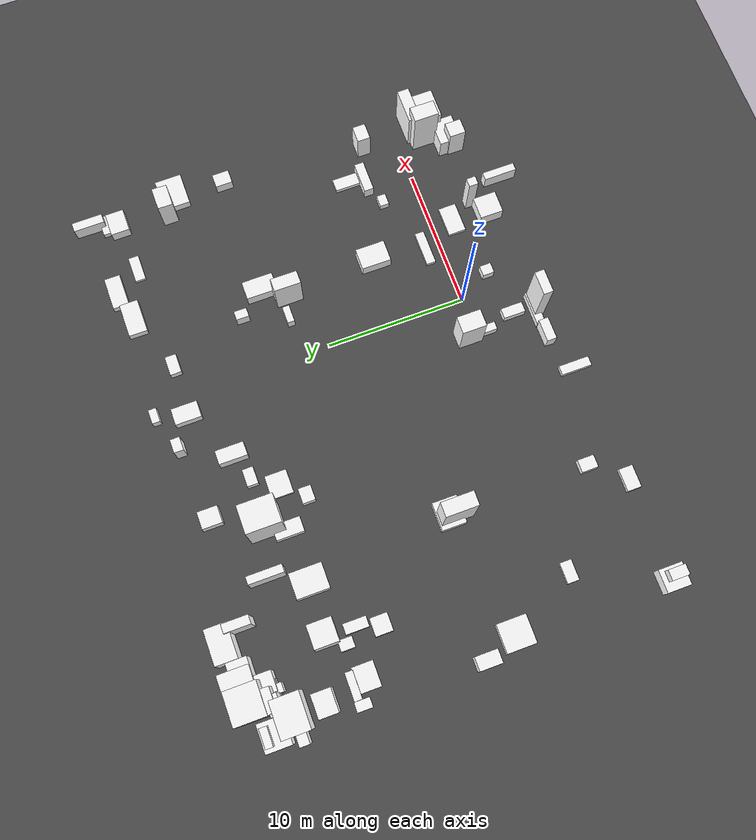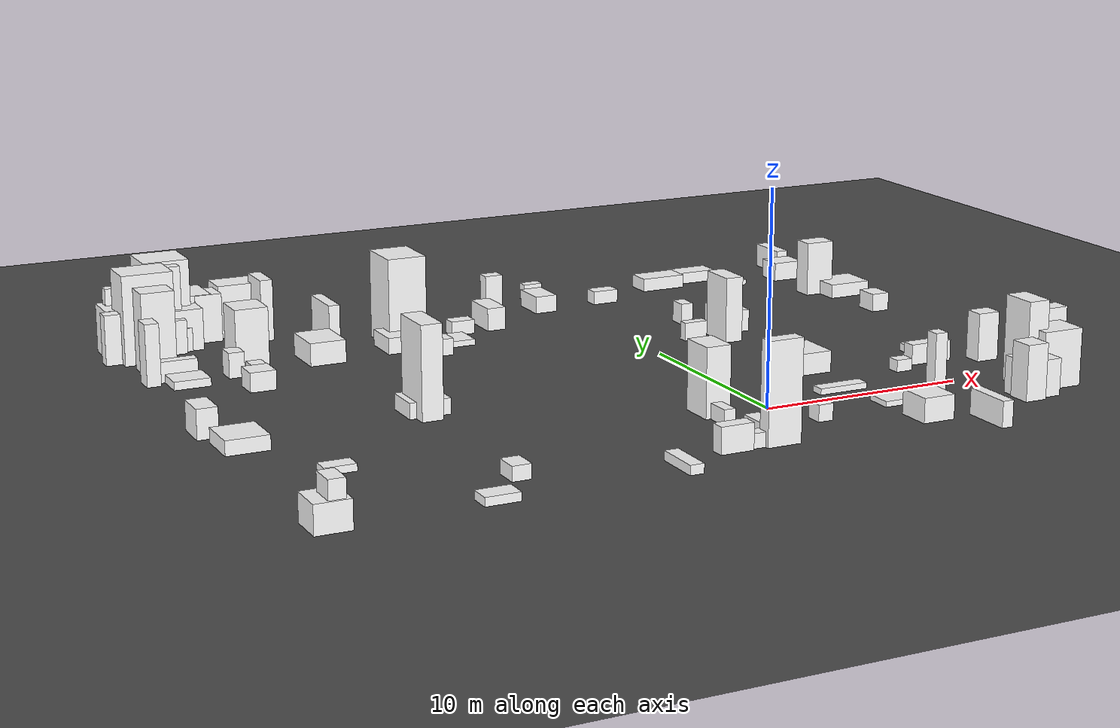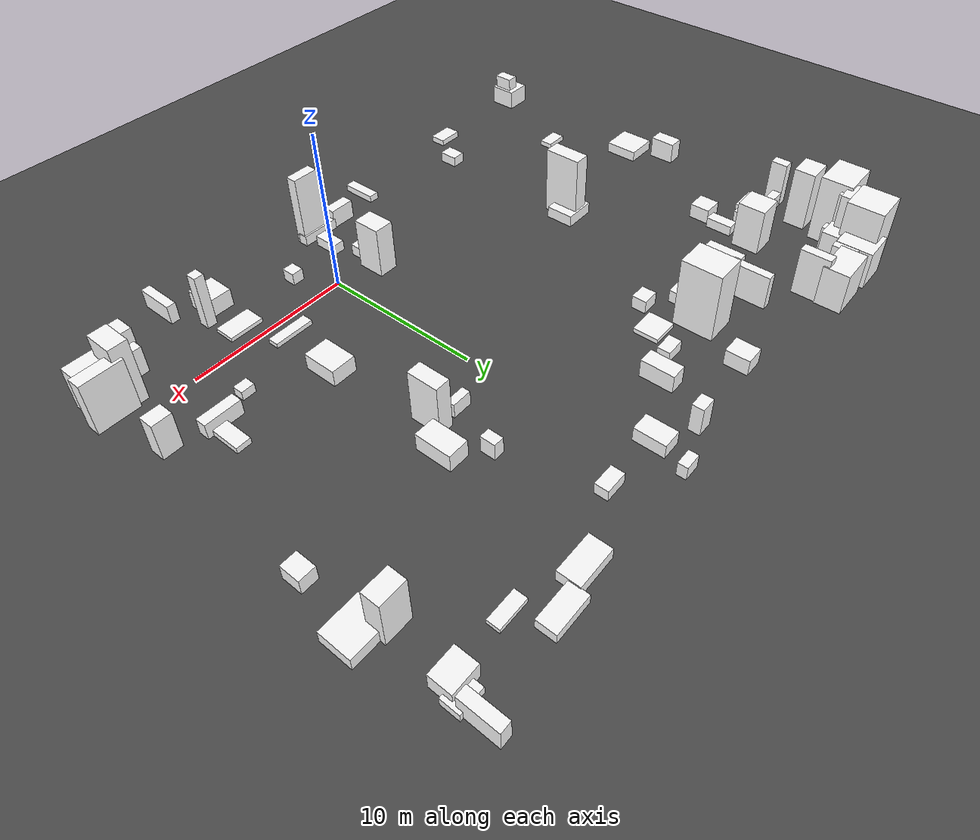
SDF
<sdf version="1.6">
 <world name="mirror_edge_world">
  <model name="ground_plane">
   <static>true</static>
   <link name="link">
    <collision name="collision">
     <geometry><plane><normal>0 0 1</normal><size>100 100</size></plane></geometry>
    </collision>
    <visual name="visual">
     <geometry><plane><normal>0 0 1</normal><size>100 100</size></plane></geometry>
     <material>
      <ambient>0.3 0.3 0.3 1</ambient>
      <diffuse>0.3 0.3 0.3 1</diffuse>
      <specular>0.5 0.5 0.5 1</specular>
      <emissive>0 0 0 1</emissive>
     </material>
    </visual>
   </link>
  </model>
  <model name="block_19_13">
   <static>true</static>
   <link name="link">
    <pose>-16.202012975402017 21.838599542866685 1.5408518312215616 0 0 0</pose>
    <visual name="visual">
     <geometry><box><size>0.6343054884045327 1.8376066959994222 3.081703662443123</size></box></geometry>
     <material>
      <ambient>1 1 1 1</ambient>
      <diffuse>1 1 1 1</diffuse>
      <specular>0.9 0.9 0.9 1</specular>
      <emissive>0.05 0.05 0.05 1</emissive>
     </material>
    </visual>
   </link>
  </model>
  <model name="block_19_14">
   <static>true</static>
   <link name="link">
    <pose>-22.99239313099075 -5.80346864161111 0.6404910453006516 0 0 0</pose>
    <visual name="visual">
     <geometry><box><size>1.6046553902521452 1.711579544830917 1.2809820906013032</size></box></geometry>
     <material>
      <ambient>1 1 1 1</ambient>
      <diffuse>1 1 1 1</diffuse>
      <specular>0.9 0.9 0.9 1</specular>
      <emissive>0.05 0.05 0.05 1</emissive>
     </material>
    </visual>
   </link>
  </model>
  <model name="block_19_18">
   <static>true</static>
   <link name="link">
    <pose>-23.54805574424907 15.969230801843974 1.4976649399642463 0 0 0</pose>
    <visual name="visual">
     <geometry><box><size>0.6708027269664167 1.053155784695749 2.9953298799284926</size></box></geometry>
     <material>
      <ambient>1 1 1 1</ambient>
      <diffuse>1 1 1 1</diffuse>
      <specular>0.9 0.9 0.9 1</specular>
      <emissive>0.05 0.05 0.05 1</emissive>
     </material>
    </visual>
   </link>
  </model>
  <model name="block_19_22">
   <static>true</static>
   <link name="link">
    <pose>4.375840806940101 11.490374755172805 1.6289961203168895 0 0 0</pose>
    <visual name="visual">
     <geometry><box><size>0.9164208010323647 1.9040976968150582 3.257992240633779</size></box></geometry>
     <material>
      <ambient>1 1 1 1</ambient>
      <diffuse>1 1 1 1</diffuse>
      <specular>0.9 0.9 0.9 1</specular>
      <emissive>0.05 0.05 0.05 1</emissive>
     </material>
    </visual>
   </link>
  </model>
  <model name="block_19_24">
   <static>true</static>
   <link name="link">
    <pose>-23.713552080973734 7.532042911151415 0.6981833328591058 0 0 0</pose>
    <visual name="visual">
     <geometry><box><size>0.9779484929861988 1.6204673549570643 1.3963666657182117</size></box></geometry>
     <material>
      <ambient>1 1 1 1</ambient>
      <diffuse>1 1 1 1</diffuse>
      <specular>0.9 0.9 0.9 1</specular>
      <emissive>0.05 0.05 0.05 1</emissive>
     </material>
    </visual>
   </link>
  </model>
  <model name="block_19_26">
   <static>true</static>
   <link name="link">
    <pose>-2.4872864471279996 -4.451877402213051 0.33875965882530135 0 0 0</pose>
    <collision name="collision">
     <geometry><box><size>2.414343872940468 0.609315285404834 0.6775193176506027</size></box></geometry>
    </collision>
    <visual name="visual">
     <geometry><box><size>2.414343872940468 0.609315285404834 0.6775193176506027</size></box></geometry>
     <material>
      <ambient>1 1 1 1</ambient>
      <diffuse>1 1 1 1</diffuse>
      <specular>0.9 0.9 0.9 1</specular>
      <emissive>0.05 0.05 0.05 1</emissive>
     </material>
    </visual>
   </link>
  </model>
  <model name="block_19_28">
   <static>true</static>
   <link name="link">
    <pose>-21.67083288677545 21.120226441842657 1.9616895174650588 0 0 0</pose>
    <visual name="visual">
     <geometry><box><size>1.3478220588731091 0.7842292086402103 3.9233790349301176</size></box></geometry>
     <material>
      <ambient>1 1 1 1</ambient>
      <diffuse>1 1 1 1</diffuse>
      <specular>0.9 0.9 0.9 1</specular>
      <emissive>0.05 0.05 0.05 1</emissive>
     </material>
    </visual>
   </link>
  </model>
  <model name="block_19_29">
   <static>true</static>
   <link name="link">
    <pose>13.993946501029065 -1.086576167034873 1.6726531310662562 0 0 0</pose>
    <visual name="visual">
     <geometry><box><size>2.436493143973526 0.8450977755387321 3.3453062621325125</size></box></geometry>
     <material>
      <ambient>1 1 1 1</ambient>
      <diffuse>1 1 1 1</diffuse>
      <specular>0.9 0.9 0.9 1</specular>
      <emissive>0.05 0.05 0.05 1</emissive>
     </material>
    </visual>
   </link>
  </model>
  <model name="block_19_30">
   <static>true</static>
   <link name="link">
    <pose>10.93249461358026 3.4338071876281218 0.4953330977453381 0 0 0</pose>
    <collision name="collision">
     <geometry><box><size>2.1888908577413226 0.6889161656684251 0.9906661954906762</size></box></geometry>
    </collision>
    <visual name="visual">
     <geometry><box><size>2.1888908577413226 0.6889161656684251 0.9906661954906762</size></box></geometry>
     <material>
      <ambient>1 1 1 1</ambient>
      <diffuse>1 1 1 1</diffuse>
      <specular>0.9 0.9 0.9 1</specular>
      <emissive>0.05 0.05 0.05 1</emissive>
     </material>
    </visual>
   </link>
  </model>
  <model name="block_19_32">
   <static>true</static>
   <link name="link">
    <pose>-17.008376293989528 23.176902993205086 1.3234841582794954 0 0 0</pose>
    <visual name="visual">
     <geometry><box><size>2.423970059439636 1.5696388986902523 2.646968316558991</size></box></geometry>
     <material>
      <ambient>1 1 1 1</ambient>
      <diffuse>1 1 1 1</diffuse>
      <specular>0.9 0.9 0.9 1</specular>
      <emissive>0.05 0.05 0.05 1</emissive>
     </material>
    </visual>
   </link>
  </model>
  <model name="block_19_34">
   <static>true</static>
   <link name="link">
    <pose>-19.25454404328935 13.19127751036152 0.47205638281876877 0 0 0</pose>
    <collision name="collision">
     <geometry><box><size>1.256835924824992 1.2451387083487018 0.9441127656375375</size></box></geometry>
    </collision>
    <visual name="visual">
     <geometry><box><size>1.256835924824992 1.2451387083487018 0.9441127656375375</size></box></geometry>
     <material>
      <ambient>1 1 1 1</ambient>
      <diffuse>1 1 1 1</diffuse>
      <specular>0.9 0.9 0.9 1</specular>
      <emissive>0.05 0.05 0.05 1</emissive>
     </material>
    </visual>
   </link>
  </model>
  <model name="block_19_35">
   <static>true</static>
   <link name="link">
    <pose>-23.325469400484696 21.759755115301328 1.2050807940757193 0 0 0</pose>
    <visual name="visual">
     <geometry><box><size>1.926816132929814 1.8125715195272165 2.4101615881514387</size></box></geometry>
     <material>
      <ambient>1 1 1 1</ambient>
      <diffuse>1 1 1 1</diffuse>
      <specular>0.9 0.9 0.9 1</specular>
      <emissive>0.05 0.05 0.05 1</emissive>
     </material>
    </visual>
   </link>
  </model>
  <model name="block_19_41">
   <static>true</static>
   <link name="link">
    <pose>13.924683789574473 21.87801823984593 0.24282756466232763 0 0 0</pose>
    <collision name="collision">
     <geometry><box><size>1.4194749413200944 1.067243132483708 0.48565512932465527</size></box></geometry>
    </collision>
    <visual name="visual">
     <geometry><box><size>1.4194749413200944 1.067243132483708 0.48565512932465527</size></box></geometry>
     <material>
      <ambient>1 1 1 1</ambient>
      <diffuse>1 1 1 1</diffuse>
      <specular>0.9 0.9 0.9 1</specular>
      <emissive>0.05 0.05 0.05 1</emissive>
     </material>
    </visual>
   </link>
  </model>
  <model name="block_19_45">
   <static>true</static>
   <link name="link">
    <pose>-22.64495845726883 18.165379572806778 1.967237534056349 0 0 0</pose>
    <visual name="visual">
     <geometry><box><size>1.609588836853626 1.340435634357934 3.934475068112698</size></box></geometry>
     <material>
      <ambient>1 1 1 1</ambient>
      <diffuse>1 1 1 1</diffuse>
      <specular>0.9 0.9 0.9 1</specular>
      <emissive>0.05 0.05 0.05 1</emissive>
     </material>
    </visual>
   </link>
  </model>
  <model name="block_19_47">
   <static>true</static>
   <link name="link">
    <pose>-5.200457969969815 18.787895366056 0.5765862929522821 0 0 0</pose>
    <collision name="collision">
     <geometry><box><size>0.9871429165947216 2.0208804708235633 1.1531725859045643</size></box></geometry>
    </collision>
    <visual name="visual">
     <geometry><box><size>0.9871429165947216 2.0208804708235633 1.1531725859045643</size></box></geometry>
     <material>
      <ambient>1 1 1 1</ambient>
      <diffuse>1 1 1 1</diffuse>
      <specular>0.9 0.9 0.9 1</specular>
      <emissive>0.05 0.05 0.05 1</emissive>
     </material>
    </visual>
   </link>
  </model>
  <model name="block_19_49">
   <static>true</static>
   <link name="link">
    <pose>14.31598940149938 13.103567996774142 0.462033321916186 0 0 0</pose>
    <collision name="collision">
     <geometry><box><size>0.9634874807768259 1.2177237019371345 0.924066643832372</size></box></geometry>
    </collision>
    <visual name="visual">
     <geometry><box><size>0.9634874807768259 1.2177237019371345 0.924066643832372</size></box></geometry>
     <material>
      <ambient>1 1 1 1</ambient>
      <diffuse>1 1 1 1</diffuse>
      <specular>0.9 0.9 0.9 1</specular>
      <emissive>0.05 0.05 0.05 1</emissive>
     </material>
    </visual>
   </link>
  </model>
  <model name="block_19_53">
   <static>true</static>
   <link name="link">
    <pose>13.441570357564864 17.550260153822133 1.4108766145460854 0 0 0</pose>
    <visual name="visual">
     <geometry><box><size>1.548782621272523 1.0586597525765162 2.8217532290921707</size></box></geometry>
     <material>
      <ambient>1 1 1 1</ambient>
      <diffuse>1 1 1 1</diffuse>
      <specular>0.9 0.9 0.9 1</specular>
      <emissive>0.05 0.05 0.05 1</emissive>
     </material>
    </visual>
   </link>
  </model>
  <model name="block_19_56">
   <static>true</static>
   <link name="link">
    <pose>-18.58845085652321 16.902385963001844 1.5128566076144738 0 0 0</pose>
    <visual name="visual">
     <geometry><box><size>1.638329995806198 1.7031578032777934 3.0257132152289477</size></box></geometry>
     <material>
      <ambient>1 1 1 1</ambient>
      <diffuse>1 1 1 1</diffuse>
      <specular>0.9 0.9 0.9 1</specular>
      <emissive>0.05 0.05 0.05 1</emissive>
     </material>
    </visual>
   </link>
  </model>
  <model name="block_19_57">
   <static>true</static>
   <link name="link">
    <pose>-9.528119491338682 14.935015286920297 0.41440752895412947 0 0 0</pose>
    <collision name="collision">
     <geometry><box><size>1.0675423214260138 0.9050835372433081 0.8288150579082589</size></box></geometry>
    </collision>
    <visual name="visual">
     <geometry><box><size>1.0675423214260138 0.9050835372433081 0.8288150579082589</size></box></geometry>
     <material>
      <ambient>1 1 1 1</ambient>
      <diffuse>1 1 1 1</diffuse>
      <specular>0.9 0.9 0.9 1</specular>
      <emissive>0.05 0.05 0.05 1</emissive>
     </material>
    </visual>
   </link>
  </model>
  <model name="block_19_63">
   <static>true</static>
   <link name="link">
    <pose>1.3137147874009116 -2.3204394190903286 0.389432252879417 0 0 0</pose>
    <collision name="collision">
     <geometry><box><size>0.7351925549029068 0.8275360300387296 0.778864505758834</size></box></geometry>
    </collision>
    <visual name="visual">
     <geometry><box><size>0.7351925549029068 0.8275360300387296 0.778864505758834</size></box></geometry>
     <material>
      <ambient>1 1 1 1</ambient>
      <diffuse>1 1 1 1</diffuse>
      <specular>0.9 0.9 0.9 1</specular>
      <emissive>0.05 0.05 0.05 1</emissive>
     </material>
    </visual>
   </link>
  </model>
  <model name="block_19_67">
   <static>true</static>
   <link name="link">
    <pose>12.747843569083699 -1.7454135941089506 2.0591905707783225 0 0 0</pose>
    <visual name="visual">
     <geometry><box><size>1.0901834121532892 1.7640521122079742 4.118381141556645</size></box></geometry>
     <material>
      <ambient>1 1 1 1</ambient>
      <diffuse>1 1 1 1</diffuse>
      <specular>0.9 0.9 0.9 1</specular>
      <emissive>0.05 0.05 0.05 1</emissive>
     </material>
    </visual>
   </link>
  </model>
  <model name="block_20_0">
   <static>true</static>
   <link name="link">
    <pose>4.514685467571358 1.1004397896064972 0.14420947527800637 0 0 0</pose>
    <collision name="collision">
     <geometry><box><size>2.4716219411072418 0.6765629143730663 0.28841895055601274</size></box></geometry>
    </collision>
    <visual name="visual">
     <geometry><box><size>2.4716219411072418 0.6765629143730663 0.28841895055601274</size></box></geometry>
     <material>
      <ambient>1 1 1 1</ambient>
      <diffuse>1 1 1 1</diffuse>
      <specular>0.9 0.9 0.9 1</specular>
      <emissive>0.05 0.05 0.05 1</emissive>
     </material>
    </visual>
   </link>
  </model>
  <model name="block_20_2">
   <static>true</static>
   <link name="link">
    <pose>5.74312214442185 -4.1243834242203326 0.5750770237253855 0 0 0</pose>
    <collision name="collision">
     <geometry><box><size>1.5781493618633786 1.6722874134998942 1.150154047450771</size></box></geometry>
    </collision>
    <visual name="visual">
     <geometry><box><size>1.5781493618633786 1.6722874134998942 1.150154047450771</size></box></geometry>
     <material>
      <ambient>1 1 1 1</ambient>
      <diffuse>1 1 1 1</diffuse>
      <specular>0.9 0.9 0.9 1</specular>
      <emissive>0.05 0.05 0.05 1</emissive>
     </material>
    </visual>
   </link>
  </model>
  <model name="block_20_3">
   <static>true</static>
   <link name="link">
    <pose>-2.7582406256418146 -0.24901939799833706 0.36740333589804863 0 0 0</pose>
    <collision name="collision">
     <geometry><box><size>0.558053115725889 2.2786463860914177 0.7348066717960973</size></box></geometry>
    </collision>
    <visual name="visual">
     <geometry><box><size>0.558053115725889 2.2786463860914177 0.7348066717960973</size></box></geometry>
     <material>
      <ambient>1 1 1 1</ambient>
      <diffuse>1 1 1 1</diffuse>
      <specular>0.9 0.9 0.9 1</specular>
      <emissive>0.05 0.05 0.05 1</emissive>
     </material>
    </visual>
   </link>
  </model>
  <model name="block_20_4">
   <static>true</static>
   <link name="link">
    <pose>-15.023052368820412 16.65996293347571 0.5646603142682598 0 0 0</pose>
    <collision name="collision">
     <geometry><box><size>1.7970187254844157 2.3229163708879845 1.1293206285365196</size></box></geometry>
    </collision>
    <visual name="visual">
     <geometry><box><size>1.7970187254844157 2.3229163708879845 1.1293206285365196</size></box></geometry>
     <material>
      <ambient>1 1 1 1</ambient>
      <diffuse>1 1 1 1</diffuse>
      <specular>0.9 0.9 0.9 1</specular>
      <emissive>0.05 0.05 0.05 1</emissive>
     </material>
    </visual>
   </link>
  </model>
  <model name="block_20_5">
   <static>true</static>
   <link name="link">
    <pose>-18.8862873155913 22.601100376216795 1.2095349943545393 0 0 0</pose>
    <visual name="visual">
     <geometry><box><size>1.3423358383189348 1.4254736673652841 2.4190699887090785</size></box></geometry>
     <material>
      <ambient>1 1 1 1</ambient>
      <diffuse>1 1 1 1</diffuse>
      <specular>0.9 0.9 0.9 1</specular>
      <emissive>0.05 0.05 0.05 1</emissive>
     </material>
    </visual>
   </link>
  </model>
  <model name="block_20_6">
   <static>true</static>
   <link name="link">
    <pose>-20.21742931815342 21.668937022031585 1.0355552330330824 0 0 0</pose>
    <visual name="visual">
     <geometry><box><size>1.3879272158803506 1.839511161518585 2.071110466066165</size></box></geometry>
     <material>
      <ambient>1 1 1 1</ambient>
      <diffuse>1 1 1 1</diffuse>
      <specular>0.9 0.9 0.9 1</specular>
      <emissive>0.05 0.05 0.05 1</emissive>
     </material>
    </visual>
   </link>
  </model>
  <model name="block_20_7">
   <static>true</static>
   <link name="link">
    <pose>-23.638514806317765 20.200768184528464 1.2363916588414665 0 0 0</pose>
    <visual name="visual">
     <geometry><box><size>1.9506910186835318 0.6981169399702842 2.472783317682933</size></box></geometry>
     <material>
      <ambient>1 1 1 1</ambient>
      <diffuse>1 1 1 1</diffuse>
      <specular>0.9 0.9 0.9 1</specular>
      <emissive>0.05 0.05 0.05 1</emissive>
     </material>
    </visual>
   </link>
  </model>
  <model name="block_20_8">
   <static>true</static>
   <link name="link">
    <pose>-22.35807815963217 16.196293190533336 0.5004770172826828 0 0 0</pose>
    <collision name="collision">
     <geometry><box><size>2.115366435512655 0.5583014288438126 1.0009540345653656</size></box></geometry>
    </collision>
    <visual name="visual">
     <geometry><box><size>2.115366435512655 0.5583014288438126 1.0009540345653656</size></box></geometry>
     <material>
      <ambient>1 1 1 1</ambient>
      <diffuse>1 1 1 1</diffuse>
      <specular>0.9 0.9 0.9 1</specular>
      <emissive>0.05 0.05 0.05 1</emissive>
     </material>
    </visual>
   </link>
  </model>
  <model name="block_20_9">
   <static>true</static>
   <link name="link">
    <pose>-14.02021431619535 -3.5843261667409245 0.3354737305644835 0 0 0</pose>
    <collision name="collision">
     <geometry><box><size>0.8892479556614801 1.182342209391757 0.670947461128967</size></box></geometry>
    </collision>
    <visual name="visual">
     <geometry><box><size>0.8892479556614801 1.182342209391757 0.670947461128967</size></box></geometry>
     <material>
      <ambient>1 1 1 1</ambient>
      <diffuse>1 1 1 1</diffuse>
      <specular>0.9 0.9 0.9 1</specular>
      <emissive>0.05 0.05 0.05 1</emissive>
     </material>
    </visual>
   </link>
  </model>
  <model name="block_20_10">
   <static>true</static>
   <link name="link">
    <pose>14.140621452771938 23.14329614194077 0.6200746623098288 0 0 0</pose>
    <visual name="visual">
     <geometry><box><size>0.6352259347299771 2.1947776680835136 1.2401493246196575</size></box></geometry>
     <material>
      <ambient>1 1 1 1</ambient>
      <diffuse>1 1 1 1</diffuse>
      <specular>0.9 0.9 0.9 1</specular>
      <emissive>0.05 0.05 0.05 1</emissive>
     </material>
    </visual>
   </link>
  </model>
  <model name="block_20_11">
   <static>true</static>
   <link name="link">
    <pose>-21.010054189777687 22.711896327424288 2.1904076846107663 0 0 0</pose>
    <visual name="visual">
     <geometry><box><size>2.2849046581249253 2.2092181107679396 4.380815369221533</size></box></geometry>
     <material>
      <ambient>1 1 1 1</ambient>
      <diffuse>1 1 1 1</diffuse>
      <specular>0.9 0.9 0.9 1</specular>
      <emissive>0.05 0.05 0.05 1</emissive>
     </material>
    </visual>
   </link>
  </model>
  <model name="block_20_14">
   <static>true</static>
   <link name="link">
    <pose>-10.324368994010733 18.208256445400437 2.211540487920637 0 0 0</pose>
    <visual name="visual">
     <geometry><box><size>1.9659173787390865 2.4547655425847745 4.423080975841274</size></box></geometry>
     <material>
      <ambient>1 1 1 1</ambient>
      <diffuse>1 1 1 1</diffuse>
      <specular>0.9 0.9 0.9 1</specular>
      <emissive>0.05 0.05 0.05 1</emissive>
     </material>
    </visual>
   </link>
  </model>
  <model name="block_20_15">
   <static>true</static>
   <link name="link">
    <pose>-8.159386392739254 16.467924520763976 0.1466601775332672 0 0 0</pose>
    <collision name="collision">
     <geometry><box><size>1.675547463246875 1.5580469568018858 0.2933203550665344</size></box></geometry>
    </collision>
    <visual name="visual">
     <geometry><box><size>1.675547463246875 1.5580469568018858 0.2933203550665344</size></box></geometry>
     <material>
      <ambient>1 1 1 1</ambient>
      <diffuse>1 1 1 1</diffuse>
      <specular>0.9 0.9 0.9 1</specular>
      <emissive>0.05 0.05 0.05 1</emissive>
     </material>
    </visual>
   </link>
  </model>
  <model name="block_20_17">
   <static>true</static>
   <link name="link">
    <pose>-20.7757009487461 21.268625548313153 0.5835475438792082 0 0 0</pose>
    <visual name="visual">
     <geometry><box><size>1.3701247612981056 1.1344508390813388 1.1670950877584163</size></box></geometry>
     <material>
      <ambient>1 1 1 1</ambient>
      <diffuse>1 1 1 1</diffuse>
      <specular>0.9 0.9 0.9 1</specular>
      <emissive>0.05 0.05 0.05 1</emissive>
     </material>
    </visual>
   </link>
  </model>
  <model name="block_20_19">
   <static>true</static>
   <link name="link">
    <pose>3.9754902940628973 15.039701778538 0.5347346233053891 0 0 0</pose>
    <collision name="collision">
     <geometry><box><size>0.6356142812768761 0.9165442230109544 1.0694692466107782</size></box></geometry>
    </collision>
    <visual name="visual">
     <geometry><box><size>0.6356142812768761 0.9165442230109544 1.0694692466107782</size></box></geometry>
     <material>
      <ambient>1 1 1 1</ambient>
      <diffuse>1 1 1 1</diffuse>
      <specular>0.9 0.9 0.9 1</specular>
      <emissive>0.05 0.05 0.05 1</emissive>
     </material>
    </visual>
   </link>
  </model>
  <model name="block_20_22">
   <static>true</static>
   <link name="link">
    <pose>5.922416416103918 -1.509002882392652 0.1306949976550948 0 0 0</pose>
    <collision name="collision">
     <geometry><box><size>2.1191479432773264 1.2815381755729247 0.2613899953101896</size></box></geometry>
    </collision>
    <visual name="visual">
     <geometry><box><size>2.1191479432773264 1.2815381755729247 0.2613899953101896</size></box></geometry>
     <material>
      <ambient>1 1 1 1</ambient>
      <diffuse>1 1 1 1</diffuse>
      <specular>0.9 0.9 0.9 1</specular>
      <emissive>0.05 0.05 0.05 1</emissive>
     </material>
    </visual>
   </link>
  </model>
  <model name="block_20_23">
   <static>true</static>
   <link name="link">
    <pose>-20.258988562885197 0.31642292921929194 0.1673360314386203 0 0 0</pose>
    <collision name="collision">
     <geometry><box><size>1.4543165337358583 0.8377993631528355 0.3346720628772406</size></box></geometry>
    </collision>
    <visual name="visual">
     <geometry><box><size>1.4543165337358583 0.8377993631528355 0.3346720628772406</size></box></geometry>
     <material>
      <ambient>1 1 1 1</ambient>
      <diffuse>1 1 1 1</diffuse>
      <specular>0.9 0.9 0.9 1</specular>
      <emissive>0.05 0.05 0.05 1</emissive>
     </material>
    </visual>
   </link>
  </model>
  <model name="block_20_24">
   <static>true</static>
   <link name="link">
    <pose>13.60997325490753 21.19936058505832 0.48889977364060994 0 0 0</pose>
    <collision name="collision">
     <geometry><box><size>1.6076365882352517 1.3133949028524263 0.9777995472812199</size></box></geometry>
    </collision>
    <visual name="visual">
     <geometry><box><size>1.6076365882352517 1.3133949028524263 0.9777995472812199</size></box></geometry>
     <material>
      <ambient>1 1 1 1</ambient>
      <diffuse>1 1 1 1</diffuse>
      <specular>0.9 0.9 0.9 1</specular>
      <emissive>0.05 0.05 0.05 1</emissive>
     </material>
    </visual>
   </link>
  </model>
  <model name="block_20_25">
   <static>true</static>
   <link name="link">
    <pose>-7.311158792072753 -5.533203838803569 0.22030398388301886 0 0 0</pose>
    <collision name="collision">
     <geometry><box><size>0.6600468773254267 2.1952085420127108 0.4406079677660377</size></box></geometry>
    </collision>
    <visual name="visual">
     <geometry><box><size>0.6600468773254267 2.1952085420127108 0.4406079677660377</size></box></geometry>
     <material>
      <ambient>1 1 1 1</ambient>
      <diffuse>1 1 1 1</diffuse>
      <specular>0.9 0.9 0.9 1</specular>
      <emissive>0.05 0.05 0.05 1</emissive>
     </material>
    </visual>
   </link>
  </model>
  <model name="block_20_27">
   <static>true</static>
   <link name="link">
    <pose>11.48834070653502 -3.717106982282688 1.3203269491472256 0 0 0</pose>
    <visual name="visual">
     <geometry><box><size>1.0822689884720356 1.1535513651715597 2.640653898294451</size></box></geometry>
     <material>
      <ambient>1 1 1 1</ambient>
      <diffuse>1 1 1 1</diffuse>
      <specular>0.9 0.9 0.9 1</specular>
      <emissive>0.05 0.05 0.05 1</emissive>
     </material>
    </visual>
   </link>
  </model>
  <model name="block_20_28">
   <static>true</static>
   <link name="link">
    <pose>11.278266595225233 4.649528182146377 0.18858520977755505 0 0 0</pose>
    <collision name="collision">
     <geometry><box><size>0.8707110186513995 1.882669683419009 0.3771704195551101</size></box></geometry>
    </collision>
    <visual name="visual">
     <geometry><box><size>0.8707110186513995 1.882669683419009 0.3771704195551101</size></box></geometry>
     <material>
      <ambient>1 1 1 1</ambient>
      <diffuse>1 1 1 1</diffuse>
      <specular>0.9 0.9 0.9 1</specular>
      <emissive>0.05 0.05 0.05 1</emissive>
     </material>
    </visual>
   </link>
  </model>
  <model name="block_20_33">
   <static>true</static>
   <link name="link">
    <pose>-21.309935254936946 21.978356717819864 2.111866766577193 0 0 0</pose>
    <visual name="visual">
     <geometry><box><size>1.6241174836194356 1.9291565462707485 4.223733533154386</size></box></geometry>
     <material>
      <ambient>1 1 1 1</ambient>
      <diffuse>1 1 1 1</diffuse>
      <specular>0.9 0.9 0.9 1</specular>
      <emissive>0.05 0.05 0.05 1</emissive>
     </material>
    </visual>
   </link>
  </model>
  <model name="block_20_35">
   <static>true</static>
   <link name="link">
    <pose>-2.128342998182905 -2.941607457997855 0.33741745019521946 0 0 0</pose>
    <collision name="collision">
     <geometry><box><size>0.7270849338332304 1.5784389128484244 0.6748349003904389</size></box></geometry>
    </collision>
    <visual name="visual">
     <geometry><box><size>0.7270849338332304 1.5784389128484244 0.6748349003904389</size></box></geometry>
     <material>
      <ambient>1 1 1 1</ambient>
      <diffuse>1 1 1 1</diffuse>
      <specular>0.9 0.9 0.9 1</specular>
      <emissive>0.05 0.05 0.05 1</emissive>
     </material>
    </visual>
   </link>
  </model>
  <model name="block_20_37">
   <static>true</static>
   <link name="link">
    <pose>-11.265635845930037 16.842911931068063 0.4041629352459363 0 0 0</pose>
    <collision name="collision">
     <geometry><box><size>1.0591226053810914 1.973845498801236 0.8083258704918725</size></box></geometry>
    </collision>
    <visual name="visual">
     <geometry><box><size>1.0591226053810914 1.973845498801236 0.8083258704918725</size></box></geometry>
     <material>
      <ambient>1 1 1 1</ambient>
      <diffuse>1 1 1 1</diffuse>
      <specular>0.9 0.9 0.9 1</specular>
      <emissive>0.05 0.05 0.05 1</emissive>
     </material>
    </visual>
   </link>
  </model>
  <model name="block_20_38">
   <static>true</static>
   <link name="link">
    <pose>-22.016859906607465 15.221524832780418 0.2012446240531679 0 0 0</pose>
    <collision name="collision">
     <geometry><box><size>1.772987107209672 1.5049434919532538 0.4024892481063358</size></box></geometry>
    </collision>
    <visual name="visual">
     <geometry><box><size>1.772987107209672 1.5049434919532538 0.4024892481063358</size></box></geometry>
     <material>
      <ambient>1 1 1 1</ambient>
      <diffuse>1 1 1 1</diffuse>
      <specular>0.9 0.9 0.9 1</specular>
      <emissive>0.05 0.05 0.05 1</emissive>
     </material>
    </visual>
   </link>
  </model>
  <model name="block_20_40">
   <static>true</static>
   <link name="link">
    <pose>6.811068293358009 -3.105010854695983 1.7565495913933535 0 0 0</pose>
    <visual name="visual">
     <geometry><box><size>0.6047296140721241 0.6617556659811232 3.513099182786707</size></box></geometry>
     <material>
      <ambient>1 1 1 1</ambient>
      <diffuse>1 1 1 1</diffuse>
      <specular>0.9 0.9 0.9 1</specular>
      <emissive>0.05 0.05 0.05 1</emissive>
     </material>
    </visual>
   </link>
  </model>
  <model name="block_20_46">
   <static>true</static>
   <link name="link">
    <pose>-22.7959200620067 5.153923107289056 0.3452382690954469 0 0 0</pose>
    <collision name="collision">
     <geometry><box><size>2.01477267343245 2.112515861414345 0.6904765381908938</size></box></geometry>
    </collision>
    <visual name="visual">
     <geometry><box><size>2.01477267343245 2.112515861414345 0.6904765381908938</size></box></geometry>
     <material>
      <ambient>1 1 1 1</ambient>
      <diffuse>1 1 1 1</diffuse>
      <specular>0.9 0.9 0.9 1</specular>
      <emissive>0.05 0.05 0.05 1</emissive>
     </material>
    </visual>
   </link>
  </model>
  <model name="block_20_47">
   <static>true</static>
   <link name="link">
    <pose>-0.8813949430676686 22.930514993534892 0.42248885549876014 0 0 0</pose>
    <collision name="collision">
     <geometry><box><size>1.0110766446209998 0.5653425774665299 0.8449777109975203</size></box></geometry>
    </collision>
    <visual name="visual">
     <geometry><box><size>1.0110766446209998 0.5653425774665299 0.8449777109975203</size></box></geometry>
     <material>
      <ambient>1 1 1 1</ambient>
      <diffuse>1 1 1 1</diffuse>
      <specular>0.9 0.9 0.9 1</specular>
      <emissive>0.05 0.05 0.05 1</emissive>
     </material>
    </visual>
   </link>
  </model>
  <model name="block_20_48">
   <static>true</static>
   <link name="link">
    <pose>2.8959762626153953 11.95976441922432 0.45532090703873346 0 0 0</pose>
    <collision name="collision">
     <geometry><box><size>1.2113013343902468 0.5076728593304756 0.9106418140774669</size></box></geometry>
    </collision>
    <visual name="visual">
     <geometry><box><size>1.2113013343902468 0.5076728593304756 0.9106418140774669</size></box></geometry>
     <material>
      <ambient>1 1 1 1</ambient>
      <diffuse>1 1 1 1</diffuse>
      <specular>0.9 0.9 0.9 1</specular>
      <emissive>0.05 0.05 0.05 1</emissive>
     </material>
    </visual>
   </link>
  </model>
  <model name="block_20_53">
   <static>true</static>
   <link name="link">
    <pose>8.927615829653568 2.719924807601683 0.28731999895102844 0 0 0</pose>
    <collision name="collision">
     <geometry><box><size>0.8191181859266701 0.6567810741552746 0.5746399979020569</size></box></geometry>
    </collision>
    <visual name="visual">
     <geometry><box><size>0.8191181859266701 0.6567810741552746 0.5746399979020569</size></box></geometry>
     <material>
      <ambient>1 1 1 1</ambient>
      <diffuse>1 1 1 1</diffuse>
      <specular>0.9 0.9 0.9 1</specular>
      <emissive>0.05 0.05 0.05 1</emissive>
     </material>
    </visual>
   </link>
  </model>
  <model name="block_20_54">
   <static>true</static>
   <link name="link">
    <pose>12.023016362059465 -3.2810231418574887 0.8796753266290436 0 0 0</pose>
    <visual name="visual">
     <geometry><box><size>1.9273093866652051 1.5567823876192282 1.7593506532580871</size></box></geometry>
     <material>
      <ambient>1 1 1 1</ambient>
      <diffuse>1 1 1 1</diffuse>
      <specular>0.9 0.9 0.9 1</specular>
      <emissive>0.05 0.05 0.05 1</emissive>
     </material>
    </visual>
   </link>
  </model>
  <model name="block_20_59">
   <static>true</static>
   <link name="link">
    <pose>-3.598091007590213 21.99930941845901 0.900321620526205 0 0 0</pose>
    <visual name="visual">
     <geometry><box><size>0.9528436212376776 0.6816030731861713 1.80064324105241</size></box></geometry>
     <material>
      <ambient>1 1 1 1</ambient>
      <diffuse>1 1 1 1</diffuse>
      <specular>0.9 0.9 0.9 1</specular>
      <emissive>0.05 0.05 0.05 1</emissive>
     </material>
    </visual>
   </link>
  </model>
  <model name="block_20_61">
   <static>true</static>
   <link name="link">
    <pose>10.059242852762495 20.947968855445634 0.13326687723425706 0 0 0</pose>
    <collision name="collision">
     <geometry><box><size>1.8321950832559482 0.7428606286662078 0.26653375446851413</size></box></geometry>
    </collision>
    <visual name="visual">
     <geometry><box><size>1.8321950832559482 0.7428606286662078 0.26653375446851413</size></box></geometry>
     <material>
      <ambient>1 1 1 1</ambient>
      <diffuse>1 1 1 1</diffuse>
      <specular>0.9 0.9 0.9 1</specular>
      <emissive>0.05 0.05 0.05 1</emissive>
     </material>
    </visual>
   </link>
  </model>
  <model name="block_21_0">
   <static>true</static>
   <link name="link">
    <pose>-14.101294522981723 6.024883513748388 2.1968181666185522 0 0 0</pose>
    <visual name="visual">
     <geometry><box><size>1.0155392355265096 2.3049458475249542 4.3936363332371045</size></box></geometry>
     <material>
      <ambient>1 1 1 1</ambient>
      <diffuse>1 1 1 1</diffuse>
      <specular>0.9 0.9 0.9 1</specular>
      <emissive>0.05 0.05 0.05 1</emissive>
     </material>
    </visual>
   </link>
  </model>
  <model name="block_21_1">
   <static>true</static>
   <link name="link">
    <pose>-19.77761916076524 23.00317301045095 1.2172856058458104 0 0 0</pose>
    <visual name="visual">
     <geometry><box><size>2.1006635716929156 2.157712954308236 2.4345712116916207</size></box></geometry>
     <material>
      <ambient>1 1 1 1</ambient>
      <diffuse>1 1 1 1</diffuse>
      <specular>0.9 0.9 0.9 1</specular>
      <emissive>0.05 0.05 0.05 1</emissive>
     </material>
    </visual>
   </link>
  </model>
  <model name="block_21_5">
   <static>true</static>
   <link name="link">
    <pose>8.723491352862055 22.791519913982466 0.2954303559382512 0 0 0</pose>
    <collision name="collision">
     <geometry><box><size>2.3140660123157217 1.1345983486356481 0.5908607118765024</size></box></geometry>
    </collision>
    <visual name="visual">
     <geometry><box><size>2.3140660123157217 1.1345983486356481 0.5908607118765024</size></box></geometry>
     <material>
      <ambient>1 1 1 1</ambient>
      <diffuse>1 1 1 1</diffuse>
      <specular>0.9 0.9 0.9 1</specular>
      <emissive>0.05 0.05 0.05 1</emissive>
     </material>
    </visual>
   </link>
  </model>
  <model name="block_21_7">
   <static>true</static>
   <link name="link">
    <pose>2.2211999005029277 20.640622595753943 0.34174492728129274 0 0 0</pose>
    <collision name="collision">
     <geometry><box><size>1.3597124876264688 0.7933034455490942 0.6834898545625855</size></box></geometry>
    </collision>
    <visual name="visual">
     <geometry><box><size>1.3597124876264688 0.7933034455490942 0.6834898545625855</size></box></geometry>
     <material>
      <ambient>1 1 1 1</ambient>
      <diffuse>1 1 1 1</diffuse>
      <specular>0.9 0.9 0.9 1</specular>
      <emissive>0.05 0.05 0.05 1</emissive>
     </material>
    </visual>
   </link>
  </model>
  <model name="block_21_8">
   <static>true</static>
   <link name="link">
    <pose>-22.573190911271013 20.353836298391546 2.202893613711683 0 0 0</pose>
    <visual name="visual">
     <geometry><box><size>2.4965198513434816 1.9593332774000605 4.405787227423366</size></box></geometry>
     <material>
      <ambient>1 1 1 1</ambient>
      <diffuse>1 1 1 1</diffuse>
      <specular>0.9 0.9 0.9 1</specular>
      <emissive>0.05 0.05 0.05 1</emissive>
     </material>
    </visual>
   </link>
  </model>
  <model name="block_21_9">
   <static>true</static>
   <link name="link">
    <pose>6.413681446553419 22.236232855383943 0.34153701783284357 0 0 0</pose>
    <collision name="collision">
     <geometry><box><size>2.397396448763181 1.313287378943796 0.6830740356656871</size></box></geometry>
    </collision>
    <visual name="visual">
     <geometry><box><size>2.397396448763181 1.313287378943796 0.6830740356656871</size></box></geometry>
     <material>
      <ambient>1 1 1 1</ambient>
      <diffuse>1 1 1 1</diffuse>
      <specular>0.9 0.9 0.9 1</specular>
      <emissive>0.05 0.05 0.05 1</emissive>
     </material>
    </visual>
   </link>
  </model>
  <model name="block_21_11">
   <static>true</static>
   <link name="link">
    <pose>-7.069711181052288 18.114165642956316 0.3544659022309604 0 0 0</pose>
    <collision name="collision">
     <geometry><box><size>1.2206208860649743 0.7779248468110778 0.7089318044619208</size></box></geometry>
    </collision>
    <visual name="visual">
     <geometry><box><size>1.2206208860649743 0.7779248468110778 0.7089318044619208</size></box></geometry>
     <material>
      <ambient>1 1 1 1</ambient>
      <diffuse>1 1 1 1</diffuse>
      <specular>0.9 0.9 0.9 1</specular>
      <emissive>0.05 0.05 0.05 1</emissive>
     </material>
    </visual>
   </link>
  </model>
  <model name="block_21_12">
   <static>true</static>
   <link name="link">
    <pose>-1.4291917642221357 20.81677030272166 0.4381439032353136 0 0 0</pose>
    <collision name="collision">
     <geometry><box><size>1.1746886545293884 1.8621728606756836 0.8762878064706272</size></box></geometry>
    </collision>
    <visual name="visual">
     <geometry><box><size>1.1746886545293884 1.8621728606756836 0.8762878064706272</size></box></geometry>
     <material>
      <ambient>1 1 1 1</ambient>
      <diffuse>1 1 1 1</diffuse>
      <specular>0.9 0.9 0.9 1</specular>
      <emissive>0.05 0.05 0.05 1</emissive>
     </material>
    </visual>
   </link>
  </model>
  <model name="block_21_13">
   <static>true</static>
   <link name="link">
    <pose>-4.404666734272968 -4.541597813634063 0.6154838360006717 0 0 0</pose>
    <collision name="collision">
     <geometry><box><size>1.5931583719651257 0.6979644636488587 1.2309676720013434</size></box></geometry>
    </collision>
    <visual name="visual">
     <geometry><box><size>1.5931583719651257 0.6979644636488587 1.2309676720013434</size></box></geometry>
     <material>
      <ambient>1 1 1 1</ambient>
      <diffuse>1 1 1 1</diffuse>
      <specular>0.9 0.9 0.9 1</specular>
      <emissive>0.05 0.05 0.05 1</emissive>
     </material>
    </visual>
   </link>
  </model>
  <model name="block_21_23">
   <static>true</static>
   <link name="link">
    <pose>-15.879165787596513 -5.937832311616445 0.1980576922972061 0 0 0</pose>
    <collision name="collision">
     <geometry><box><size>1.597056396192772 1.0125197062627078 0.3961153845944122</size></box></geometry>
    </collision>
    <visual name="visual">
     <geometry><box><size>1.597056396192772 1.0125197062627078 0.3961153845944122</size></box></geometry>
     <material>
      <ambient>1 1 1 1</ambient>
      <diffuse>1 1 1 1</diffuse>
      <specular>0.9 0.9 0.9 1</specular>
      <emissive>0.05 0.05 0.05 1</emissive>
     </material>
    </visual>
   </link>
  </model>
  <model name="block_21_28">
   <static>true</static>
   <link name="link">
    <pose>-23.31868286314023 22.225748589059457 1.6173883492211387 0 0 0</pose>
    <visual name="visual">
     <geometry><box><size>1.3157366970601805 0.5294056361760271 3.2347766984422774</size></box></geometry>
     <material>
      <ambient>1 1 1 1</ambient>
      <diffuse>1 1 1 1</diffuse>
      <specular>0.9 0.9 0.9 1</specular>
      <emissive>0.05 0.05 0.05 1</emissive>
     </material>
    </visual>
   </link>
  </model>
  <model name="block_21_30">
   <static>true</static>
   <link name="link">
    <pose>13.804492577341321 -2.00748050865434 1.371654315191859 0 0 0</pose>
    <visual name="visual">
     <geometry><box><size>2.07832350052284 2.2626828310413014 2.743308630383718</size></box></geometry>
     <material>
      <ambient>1 1 1 1</ambient>
      <diffuse>1 1 1 1</diffuse>
      <specular>0.9 0.9 0.9 1</specular>
      <emissive>0.05 0.05 0.05 1</emissive>
     </material>
    </visual>
   </link>
  </model>
  <model name="block_21_35">
   <static>true</static>
   <link name="link">
    <pose>4.994097717102218 4.896131420074922 0.5191223141912091 0 0 0</pose>
    <collision name="collision">
     <geometry><box><size>1.5236868326988766 2.1201979622517397 1.0382446283824183</size></box></geometry>
    </collision>
    <visual name="visual">
     <geometry><box><size>1.5236868326988766 2.1201979622517397 1.0382446283824183</size></box></geometry>
     <material>
      <ambient>1 1 1 1</ambient>
      <diffuse>1 1 1 1</diffuse>
      <specular>0.9 0.9 0.9 1</specular>
      <emissive>0.05 0.05 0.05 1</emissive>
     </material>
    </visual>
   </link>
  </model>
  <model name="block_21_36">
   <static>true</static>
   <link name="link">
    <pose>-22.776894803156978 -5.927900825430617 1.0649229588556144 0 0 0</pose>
    <visual name="visual">
     <geometry><box><size>0.7492053261539457 1.2393501379556169 2.1298459177112288</size></box></geometry>
     <material>
      <ambient>1 1 1 1</ambient>
      <diffuse>1 1 1 1</diffuse>
      <specular>0.9 0.9 0.9 1</specular>
      <emissive>0.05 0.05 0.05 1</emissive>
     </material>
    </visual>
   </link>
  </model>
  <model name="block_21_37">
   <static>true</static>
   <link name="link">
    <pose>14.183750473599254 -2.170702760997169 1.2071409706469893 0 0 0</pose>
    <visual name="visual">
     <geometry><box><size>1.3163577211442796 1.6429075234553951 2.4142819412939787</size></box></geometry>
     <material>
      <ambient>1 1 1 1</ambient>
      <diffuse>1 1 1 1</diffuse>
      <specular>0.9 0.9 0.9 1</specular>
      <emissive>0.05 0.05 0.05 1</emissive>
     </material>
    </visual>
   </link>
  </model>
  <model name="block_21_44">
   <static>true</static>
   <link name="link">
    <pose>-2.141305358236334 -4.610683294821877 2.3325229078745253 0 0 0</pose>
    <visual name="visual">
     <geometry><box><size>1.6410611261448638 0.687157584448272 4.665045815749051</size></box></geometry>
     <material>
      <ambient>1 1 1 1</ambient>
      <diffuse>1 1 1 1</diffuse>
      <specular>0.9 0.9 0.9 1</specular>
      <emissive>0.05 0.05 0.05 1</emissive>
     </material>
    </visual>
   </link>
  </model>
  <model name="block_21_49">
   <static>true</static>
   <link name="link">
    <pose>-13.781402721481241 19.187578090689573 1.1049109268265358 0 0 0</pose>
    <visual name="visual">
     <geometry><box><size>0.5609836254339222 2.4961403580708725 2.2098218536530716</size></box></geometry>
     <material>
      <ambient>1 1 1 1</ambient>
      <diffuse>1 1 1 1</diffuse>
      <specular>0.9 0.9 0.9 1</specular>
      <emissive>0.05 0.05 0.05 1</emissive>
     </material>
    </visual>
   </link>
  </model>
  <model name="block_21_50">
   <static>true</static>
   <link name="link">
    <pose>-18.720883209464592 14.759411273728276 0.32869425651119294 0 0 0</pose>
    <collision name="collision">
     <geometry><box><size>0.7451828183855809 1.6374516437631053 0.6573885130223859</size></box></geometry>
    </collision>
    <visual name="visual">
     <geometry><box><size>0.7451828183855809 1.6374516437631053 0.6573885130223859</size></box></geometry>
     <material>
      <ambient>1 1 1 1</ambient>
      <diffuse>1 1 1 1</diffuse>
      <specular>0.9 0.9 0.9 1</specular>
      <emissive>0.05 0.05 0.05 1</emissive>
     </material>
    </visual>
   </link>
  </model>
  <model name="block_21_51">
   <static>true</static>
   <link name="link">
    <pose>-13.949174432339762 6.405646610784182 0.3753171996510287 0 0 0</pose>
    <collision name="collision">
     <geometry><box><size>1.9752945375148625 1.7706816084837973 0.7506343993020574</size></box></geometry>
    </collision>
    <visual name="visual">
     <geometry><box><size>1.9752945375148625 1.7706816084837973 0.7506343993020574</size></box></geometry>
     <material>
      <ambient>1 1 1 1</ambient>
      <diffuse>1 1 1 1</diffuse>
      <specular>0.9 0.9 0.9 1</specular>
      <emissive>0.05 0.05 0.05 1</emissive>
     </material>
    </visual>
   </link>
  </model>
  <model name="block_21_55">
   <static>true</static>
   <link name="link">
    <pose>14.626292616407667 16.81317589616472 0.3629381285156321 0 0 0</pose>
    <collision name="collision">
     <geometry><box><size>2.275008341360894 1.92317207023942 0.7258762570312642</size></box></geometry>
    </collision>
    <visual name="visual">
     <geometry><box><size>2.275008341360894 1.92317207023942 0.7258762570312642</size></box></geometry>
     <material>
      <ambient>1 1 1 1</ambient>
      <diffuse>1 1 1 1</diffuse>
      <specular>0.9 0.9 0.9 1</specular>
      <emissive>0.05 0.05 0.05 1</emissive>
     </material>
    </visual>
   </link>
  </model>
  <model name="block_21_60">
   <static>true</static>
   <link name="link">
    <pose>-20.765225960122258 21.14553245791586 0.8460063084245717 0 0 0</pose>
    <visual name="visual">
     <geometry><box><size>0.6252697133135838 1.5047269302922608 1.6920126168491434</size></box></geometry>
     <material>
      <ambient>1 1 1 1</ambient>
      <diffuse>1 1 1 1</diffuse>
      <specular>0.9 0.9 0.9 1</specular>
      <emissive>0.05 0.05 0.05 1</emissive>
     </material>
    </visual>
   </link>
  </model>
  <model name="block_21_63">
   <static>true</static>
   <link name="link">
    <pose>-2.6761420174648407 0.6326785275434803 1.6384799038084024 0 0 0</pose>
    <visual name="visual">
     <geometry><box><size>1.223049547730895 1.7223811858038685 3.2769598076168047</size></box></geometry>
     <material>
      <ambient>1 1 1 1</ambient>
      <diffuse>1 1 1 1</diffuse>
      <specular>0.9 0.9 0.9 1</specular>
      <emissive>0.05 0.05 0.05 1</emissive>
     </material>
    </visual>
   </link>
  </model>
  <model name="block_22_3">
   <static>true</static>
   <link name="link">
    <pose>13.585655555830407 2.6715768033917007 1.1756607270175794 0 0 0</pose>
    <visual name="visual">
     <geometry><box><size>1.1431951423289441 0.9307273564615239 2.351321454035159</size></box></geometry>
     <material>
      <ambient>1 1 1 1</ambient>
      <diffuse>1 1 1 1</diffuse>
      <specular>0.9 0.9 0.9 1</specular>
      <emissive>0.05 0.05 0.05 1</emissive>
     </material>
    </visual>
   </link>
  </model>
  <model name="block_22_8">
   <static>true</static>
   <link name="link">
    <pose>-19.646305732447484 15.724157012841786 0.6144079187472877 0 0 0</pose>
    <collision name="collision">
     <geometry><box><size>0.7582244085763663 0.9809607176335711 1.2288158374945755</size></box></geometry>
    </collision>
    <visual name="visual">
     <geometry><box><size>0.7582244085763663 0.9809607176335711 1.2288158374945755</size></box></geometry>
     <material>
      <ambient>1 1 1 1</ambient>
      <diffuse>1 1 1 1</diffuse>
      <specular>0.9 0.9 0.9 1</specular>
      <emissive>0.05 0.05 0.05 1</emissive>
     </material>
    </visual>
   </link>
  </model>
  <model name="block_22_9">
   <static>true</static>
   <link name="link">
    <pose>-8.82719691341305 21.497144708799848 0.5138358242982739 0 0 0</pose>
    <visual name="visual">
     <geometry><box><size>1.2255413024968551 1.4386013710951715 1.0276716485965478</size></box></geometry>
     <material>
      <ambient>1 1 1 1</ambient>
      <diffuse>1 1 1 1</diffuse>
      <specular>0.9 0.9 0.9 1</specular>
      <emissive>0.05 0.05 0.05 1</emissive>
     </material>
    </visual>
   </link>
  </model>
  <model name="block_22_11">
   <static>true</static>
   <link name="link">
    <pose>5.503327586776109 13.1964350504506 0.5475276417022839 0 0 0</pose>
    <collision name="collision">
     <geometry><box><size>1.2790130024689923 2.222103620159895 1.0950552834045677</size></box></geometry>
    </collision>
    <visual name="visual">
     <geometry><box><size>1.2790130024689923 2.222103620159895 1.0950552834045677</size></box></geometry>
     <material>
      <ambient>1 1 1 1</ambient>
      <diffuse>1 1 1 1</diffuse>
      <specular>0.9 0.9 0.9 1</specular>
      <emissive>0.05 0.05 0.05 1</emissive>
     </material>
    </visual>
   </link>
  </model>
  <model name="block_22_13">
   <static>true</static>
   <link name="link">
    <pose>7.877900418215155 -5.830974095693271 0.6098755772762758 0 0 0</pose>
    <visual name="visual">
     <geometry><box><size>0.5499892255830408 2.3592923568017383 1.2197511545525517</size></box></geometry>
     <material>
      <ambient>1 1 1 1</ambient>
      <diffuse>1 1 1 1</diffuse>
      <specular>0.9 0.9 0.9 1</specular>
      <emissive>0.05 0.05 0.05 1</emissive>
     </material>
    </visual>
   </link>
  </model>
 </world>
</sdf>
